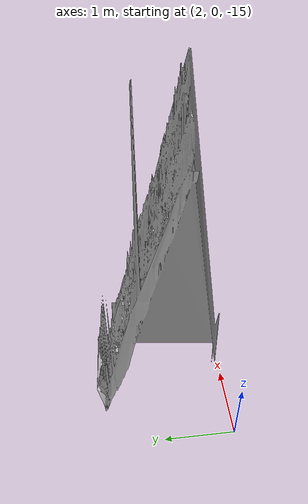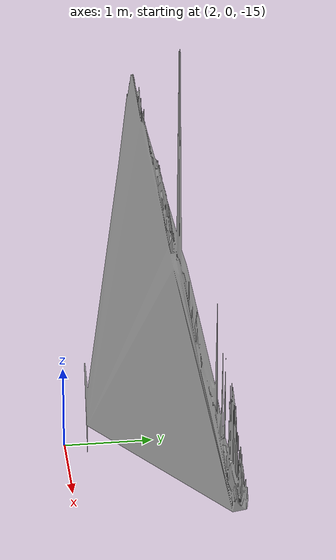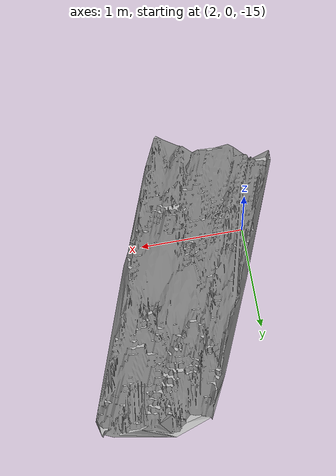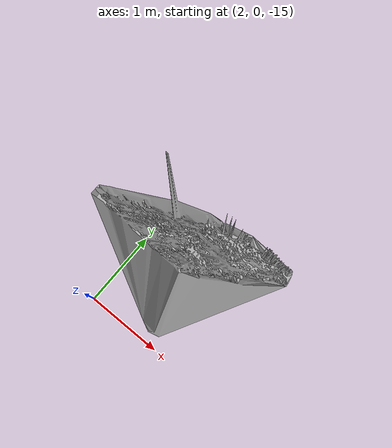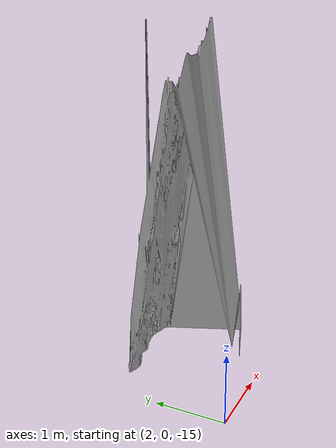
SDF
<?xml version="1.0" ?>
<sdf version="1.6">
  <model name="simple_model">
    <static>true</static>
    <link name="link">
      <visual name="visual">
        <geometry>
          <mesh>
            <uri>model://mesh1/meshes/mesh1.dae</uri> <!-- Replace with the correct path to your mesh file -->
          </mesh>
        </geometry>
        <material>
          <ambient>0.7 0.7 0.7 1</ambient>
          <diffuse>0.7 0.7 0.7 1</diffuse>
          <specular>0.7 0.7 0.7 1</specular>
        </material>
      </visual>
      <collision name="collision">
        <geometry>
          <mesh>
            <uri>model://mesh1/meshes/mesh1.dae</uri> <!-- Replace with the correct path to your mesh file -->
          </mesh>
        </geometry>
      </collision>
    </link>
  </model>
</sdf>
